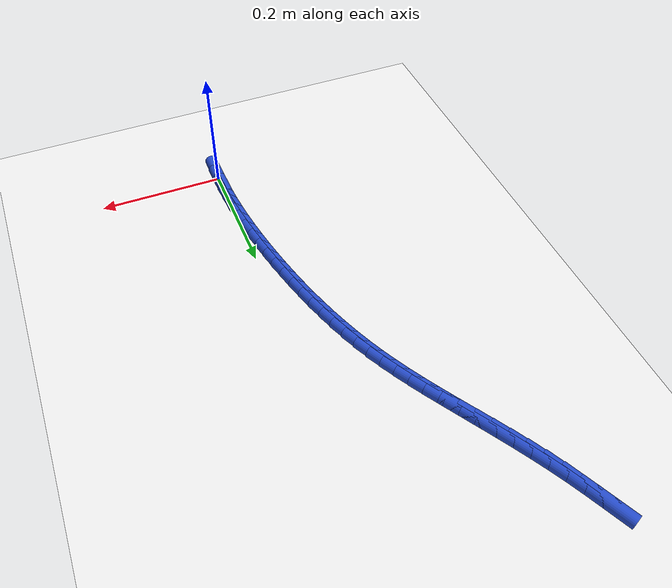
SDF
<sdf version="1.6">
 <world name="default">
  <model name="ground_plane">
   <static>1</static>
   <link name="link">
    <collision name="collision">
     <geometry><plane><normal>0 0 1</normal><size>100 100</size></plane></geometry>
     <surface><friction><ode><mu>100</mu><mu2>50</mu2></ode></friction></surface>
    </collision>
    <visual name="visual">
     <cast_shadows>0</cast_shadows>
     <geometry><plane><normal>0 0 1</normal><size>100 100</size></plane></geometry>
     <material>
      <script><uri>file://media/materials/scripts/gazebo.material</uri><name>Gazebo/WhiteGlow</name></script>
     </material>
    </visual>
   </link>
  </model>
  <model name="line">
   <link name="link_1">
    <pose>-0.00015712953239979557 0.024029646575687506 0.01 0 1.57 -1.534762119984785</pose>
    <collision name="collision">
     <geometry><cylinder><radius>0.01</radius><length>0.08</length></cylinder></geometry>
    </collision>
    <visual name="visual">
     <material>
      <script><name>Gazebo/Blue</name><uri>file://media/materials/scripts/gazebo.material</uri></script>
     </material>
     <geometry><cylinder><radius>0.01</radius><length>0.08</length></cylinder></geometry>
    </visual>
   </link>
   <link name="link_2">
    <pose>-0.0010254811451260578 0.048117196043376824 0.01 0 1.57 -1.5070020505178476</pose>
    <collision name="collision">
     <geometry><cylinder><radius>0.01</radius><length>0.08</length></cylinder></geometry>
    </collision>
    <visual name="visual">
     <material>
      <script><name>Gazebo/Blue</name><uri>file://media/materials/scripts/gazebo.material</uri></script>
     </material>
     <geometry><cylinder><radius>0.01</radius><length>0.08</length></cylinder></geometry>
    </visual>
   </link>
   <link name="link_3">
    <pose>-0.002566957849017019 0.07224765264961866 0.01 0 1.57 -1.4809456970232773</pose>
    <collision name="collision">
     <geometry><cylinder><radius>0.01</radius><length>0.08</length></cylinder></geometry>
    </collision>
    <visual name="visual">
     <material>
      <script><name>Gazebo/Blue</name><uri>file://media/materials/scripts/gazebo.material</uri></script>
     </material>
     <geometry><cylinder><radius>0.01</radius><length>0.08</length></cylinder></geometry>
    </visual>
   </link>
   <link name="link_4">
    <pose>-0.004743462654910904 0.09640602064096374 0.01 0 1.57 -1.4565549815009184</pose>
    <collision name="collision">
     <geometry><cylinder><radius>0.01</radius><length>0.08</length></cylinder></geometry>
    </collision>
    <visual name="visual">
     <material>
      <script><name>Gazebo/Blue</name><uri>file://media/materials/scripts/gazebo.material</uri></script>
     </material>
     <geometry><cylinder><radius>0.01</radius><length>0.08</length></cylinder></geometry>
    </visual>
   </link>
   <link name="link_5">
    <pose>-0.007516898573645941 0.12057730426396276 0.01 0 1.57 -1.4337875323644709</pose>
    <collision name="collision">
     <geometry><cylinder><radius>0.01</radius><length>0.08</length></cylinder></geometry>
    </collision>
    <visual name="visual">
     <material>
      <script><name>Gazebo/Blue</name><uri>file://media/materials/scripts/gazebo.material</uri></script>
     </material>
     <geometry><cylinder><radius>0.01</radius><length>0.08</length></cylinder></geometry>
    </visual>
   </link>
   <link name="link_6">
    <pose>-0.010849168616060355 0.14474650776516648 0.01 0 1.57 -1.4125986293645059</pose>
    <collision name="collision">
     <geometry><cylinder><radius>0.01</radius><length>0.08</length></cylinder></geometry>
    </collision>
    <visual name="visual">
     <material>
      <script><name>Gazebo/Blue</name><uri>file://media/materials/scripts/gazebo.material</uri></script>
     </material>
     <geometry><cylinder><radius>0.01</radius><length>0.08</length></cylinder></geometry>
    </visual>
   </link>
   <link name="link_7">
    <pose>-0.014702175792992371 0.16889863539112565 0.01 0 1.57 -1.3929428521763785</pose>
    <collision name="collision">
     <geometry><cylinder><radius>0.01</radius><length>0.08</length></cylinder></geometry>
    </collision>
    <visual name="visual">
     <material>
      <script><name>Gazebo/Blue</name><uri>file://media/materials/scripts/gazebo.material</uri></script>
     </material>
     <geometry><cylinder><radius>0.01</radius><length>0.08</length></cylinder></geometry>
    </visual>
   </link>
   <link name="link_8">
    <pose>-0.019037823115280218 0.19301869138839095 0.01 0 1.57 -1.374775146268974</pose>
    <collision name="collision">
     <geometry><cylinder><radius>0.01</radius><length>0.08</length></cylinder></geometry>
    </collision>
    <visual name="visual">
     <material>
      <script><name>Gazebo/Blue</name><uri>file://media/materials/scripts/gazebo.material</uri></script>
     </material>
     <geometry><cylinder><radius>0.01</radius><length>0.08</length></cylinder></geometry>
    </visual>
   </link>
   <link name="link_9">
    <pose>-0.023818020900240332 0.2170916772969812 0.01 0 1.57 -1.3574642948151834</pose>
    <collision name="collision">
     <geometry><cylinder><radius>0.01</radius><length>0.08</length></cylinder></geometry>
    </collision>
    <visual name="visual">
     <material>
      <script><name>Gazebo/Blue</name><uri>file://media/materials/scripts/gazebo.material</uri></script>
     </material>
     <geometry><cylinder><radius>0.01</radius><length>0.08</length></cylinder></geometry>
    </visual>
   </link>
   <link name="link_10">
    <pose>-0.02901836761405199 0.24109752416871083 0.01 0 1.57 -1.3391526477794322</pose>
    <collision name="collision">
     <geometry><cylinder><radius>0.01</radius><length>0.08</length></cylinder></geometry>
    </collision>
    <visual name="visual">
     <material>
      <script><name>Gazebo/Blue</name><uri>file://media/materials/scripts/gazebo.material</uri></script>
     </material>
     <geometry><cylinder><radius>0.01</radius><length>0.08</length></cylinder></geometry>
    </visual>
   </link>
   <link name="link_11">
    <pose>-0.03465656522533817 0.26500056669429106 0.01 0 1.57 -1.3194341095053292</pose>
    <collision name="collision">
     <geometry><cylinder><radius>0.01</radius><length>0.08</length></cylinder></geometry>
    </collision>
    <visual name="visual">
     <material>
      <script><name>Gazebo/Blue</name><uri>file://media/materials/scripts/gazebo.material</uri></script>
     </material>
     <geometry><cylinder><radius>0.01</radius><length>0.08</length></cylinder></geometry>
    </visual>
   </link>
   <link name="link_12">
    <pose>-0.04075838458038178 0.28876215061761396 0.01 0 1.57 -1.2982438296133518</pose>
    <collision name="collision">
     <geometry><cylinder><radius>0.01</radius><length>0.08</length></cylinder></geometry>
    </collision>
    <visual name="visual">
     <material>
      <script><name>Gazebo/Blue</name><uri>file://media/materials/scripts/gazebo.material</uri></script>
     </material>
     <geometry><cylinder><radius>0.01</radius><length>0.08</length></cylinder></geometry>
    </visual>
   </link>
   <link name="link_13">
    <pose>-0.04734959652546573 0.312343621682572 0.01 0 1.57 -1.2755126961789984</pose>
    <collision name="collision">
     <geometry><cylinder><radius>0.01</radius><length>0.08</length></cylinder></geometry>
    </collision>
    <visual name="visual">
     <material>
      <script><name>Gazebo/Blue</name><uri>file://media/materials/scripts/gazebo.material</uri></script>
     </material>
     <geometry><cylinder><radius>0.01</radius><length>0.08</length></cylinder></geometry>
    </visual>
   </link>
   <link name="link_14">
    <pose>-0.05445597190687294 0.33570632563305736 0.01 0 1.57 -1.251168259937428</pose>
    <collision name="collision">
     <geometry><cylinder><radius>0.01</radius><length>0.08</length></cylinder></geometry>
    </collision>
    <visual name="visual">
     <material>
      <script><name>Gazebo/Blue</name><uri>file://media/materials/scripts/gazebo.material</uri></script>
     </material>
     <geometry><cylinder><radius>0.01</radius><length>0.08</length></cylinder></geometry>
    </visual>
   </link>
   <link name="link_15">
    <pose>-0.062103281570886355 0.35881160821296265 0.01 0 1.57 -1.2251359467372962</pose>
    <collision name="collision">
     <geometry><cylinder><radius>0.01</radius><length>0.08</length></cylinder></geometry>
    </collision>
    <visual name="visual">
     <material>
      <script><name>Gazebo/Blue</name><uri>file://media/materials/scripts/gazebo.material</uri></script>
     </material>
     <geometry><cylinder><radius>0.01</radius><length>0.08</length></cylinder></geometry>
    </visual>
   </link>
   <link name="link_16">
    <pose>-0.07031729636378886 0.3816208151661799 0.01 0 1.57 -1.19734062881139</pose>
    <collision name="collision">
     <geometry><cylinder><radius>0.01</radius><length>0.08</length></cylinder></geometry>
    </collision>
    <visual name="visual">
     <material>
      <script><name>Gazebo/Blue</name><uri>file://media/materials/scripts/gazebo.material</uri></script>
     </material>
     <geometry><cylinder><radius>0.01</radius><length>0.08</length></cylinder></geometry>
    </visual>
   </link>
   <link name="link_17">
    <pose>-0.07912378713186341 0.40409529223660157 0.01 0 1.57 -1.167708628104993</pose>
    <collision name="collision">
     <geometry><cylinder><radius>0.01</radius><length>0.08</length></cylinder></geometry>
    </collision>
    <visual name="visual">
     <material>
      <script><name>Gazebo/Blue</name><uri>file://media/materials/scripts/gazebo.material</uri></script>
     </material>
     <geometry><cylinder><radius>0.01</radius><length>0.08</length></cylinder></geometry>
    </visual>
   </link>
   <link name="link_18">
    <pose>-0.08854852472139291 0.4261963851681201 0.01 0 1.57 -1.136170246248309</pose>
    <collision name="collision">
     <geometry><cylinder><radius>0.01</radius><length>0.08</length></cylinder></geometry>
    </collision>
    <visual name="visual">
     <material>
      <script><name>Gazebo/Blue</name><uri>file://media/materials/scripts/gazebo.material</uri></script>
     </material>
     <geometry><cylinder><radius>0.01</radius><length>0.08</length></cylinder></geometry>
    </visual>
   </link>
   <link name="link_19">
    <pose>-0.09861727955466063 0.4478854401632751 0.01 0 1.57 -1.1039069110874744</pose>
    <collision name="collision">
     <geometry><cylinder><radius>0.01</radius><length>0.08</length></cylinder></geometry>
    </collision>
    <visual name="visual">
     <material>
      <script><name>Gazebo/Blue</name><uri>file://media/materials/scripts/gazebo.material</uri></script>
     </material>
     <geometry><cylinder><radius>0.01</radius><length>0.08</length></cylinder></geometry>
    </visual>
   </link>
   <link name="link_20">
    <pose>-0.1093343643420875 0.46914701458705005 0.01 0 1.57 -1.0755684794429023</pose>
    <collision name="collision">
     <geometry><cylinder><radius>0.01</radius><length>0.08</length></cylinder></geometry>
    </collision>
    <visual name="visual">
     <material>
      <script><name>Gazebo/Blue</name><uri>file://media/materials/scripts/gazebo.material</uri></script>
     </material>
     <geometry><cylinder><radius>0.01</radius><length>0.08</length></cylinder></geometry>
    </visual>
   </link>
   <link name="link_21">
    <pose>-0.12062511963380591 0.4900510912986632 0.01 0 1.57 -1.0524000151151458</pose>
    <collision name="collision">
     <geometry><cylinder><radius>0.01</radius><length>0.08</length></cylinder></geometry>
    </collision>
    <visual name="visual">
     <material>
      <script><name>Gazebo/Blue</name><uri>file://media/materials/scripts/gazebo.material</uri></script>
     </material>
     <geometry><cylinder><radius>0.01</radius><length>0.08</length></cylinder></geometry>
    </visual>
   </link>
   <link name="link_22">
    <pose>-0.13239672260601829 0.5106873007798525 0.01 0 1.57 -1.0345260010369837</pose>
    <collision name="collision">
     <geometry><cylinder><radius>0.01</radius><length>0.08</length></cylinder></geometry>
    </collision>
    <visual name="visual">
     <material>
      <script><name>Gazebo/Blue</name><uri>file://media/materials/scripts/gazebo.material</uri></script>
     </material>
     <geometry><cylinder><radius>0.01</radius><length>0.08</length></cylinder></geometry>
    </visual>
   </link>
   <link name="link_23">
    <pose>-0.14455635043492715 0.5311452735123564 0.01 0 1.57 -1.0220009083321053</pose>
    <collision name="collision">
     <geometry><cylinder><radius>0.01</radius><length>0.08</length></cylinder></geometry>
    </collision>
    <visual name="visual">
     <material>
      <script><name>Gazebo/Blue</name><uri>file://media/materials/scripts/gazebo.material</uri></script>
     </material>
     <geometry><cylinder><radius>0.01</radius><length>0.08</length></cylinder></geometry>
    </visual>
   </link>
   <link name="link_24">
    <pose>-0.157011180296735 0.551514639977913 0.01 0 1.57 -1.0148236706591967</pose>
    <collision name="collision">
     <geometry><cylinder><radius>0.01</radius><length>0.08</length></cylinder></geometry>
    </collision>
    <visual name="visual">
     <material>
      <script><name>Gazebo/Blue</name><uri>file://media/materials/scripts/gazebo.material</uri></script>
     </material>
     <geometry><cylinder><radius>0.01</radius><length>0.08</length></cylinder></geometry>
    </visual>
   </link>
   <link name="link_25">
    <pose>-0.16966838936764422 0.57188503065826 0.01 0 1.57 -1.012949040087298</pose>
    <collision name="collision">
     <geometry><cylinder><radius>0.01</radius><length>0.08</length></cylinder></geometry>
    </collision>
    <visual name="visual">
     <material>
      <script><name>Gazebo/Blue</name><uri>file://media/materials/scripts/gazebo.material</uri></script>
     </material>
     <geometry><cylinder><radius>0.01</radius><length>0.08</length></cylinder></geometry>
    </visual>
   </link>
   <link name="link_26">
    <pose>-0.18243515482385728 0.592346076035136 0.01 0 1.57 -1.0162950817574345</pose>
    <collision name="collision">
     <geometry><cylinder><radius>0.01</radius><length>0.08</length></cylinder></geometry>
    </collision>
    <visual name="visual">
     <material>
      <script><name>Gazebo/Blue</name><uri>file://media/materials/scripts/gazebo.material</uri></script>
     </material>
     <geometry><cylinder><radius>0.01</radius><length>0.08</length></cylinder></geometry>
    </visual>
   </link>
   <link name="link_27">
    <pose>-0.1952186538415767 0.6129874065902788 0.01 0 1.57 -1.0247466729481558</pose>
    <collision name="collision">
     <geometry><cylinder><radius>0.01</radius><length>0.08</length></cylinder></geometry>
    </collision>
    <visual name="visual">
     <material>
      <script><name>Gazebo/Blue</name><uri>file://media/materials/scripts/gazebo.material</uri></script>
     </material>
     <geometry><cylinder><radius>0.01</radius><length>0.08</length></cylinder></geometry>
    </visual>
   </link>
   <link name="link_28">
    <pose>-0.20792606359700502 0.6338986528054272 0.01 0 1.57 -1.0381553246730917</pose>
    <collision name="collision">
     <geometry><cylinder><radius>0.01</radius><length>0.08</length></cylinder></geometry>
    </collision>
    <visual name="visual">
     <material>
      <script><name>Gazebo/Blue</name><uri>file://media/materials/scripts/gazebo.material</uri></script>
     </material>
     <geometry><cylinder><radius>0.01</radius><length>0.08</length></cylinder></geometry>
    </visual>
   </link>
   <link name="link_29">
    <pose>-0.22046456126634462 0.6551694451623188 0.01 0 1.57 -1.056335992029727</pose>
    <collision name="collision">
     <geometry><cylinder><radius>0.01</radius><length>0.08</length></cylinder></geometry>
    </collision>
    <visual name="visual">
     <material>
      <script><name>Gazebo/Blue</name><uri>file://media/materials/scripts/gazebo.material</uri></script>
     </material>
     <geometry><cylinder><radius>0.01</radius><length>0.08</length></cylinder></geometry>
    </visual>
   </link>
   <link name="link_30">
    <pose>-0.23274132402579786 0.6768894141426913 0.01 0 1.57 -1.0790618324481958</pose>
    <collision name="collision">
     <geometry><cylinder><radius>0.01</radius><length>0.08</length></cylinder></geometry>
    </collision>
    <visual name="visual">
     <material>
      <script><name>Gazebo/Blue</name><uri>file://media/materials/scripts/gazebo.material</uri></script>
     </material>
     <geometry><cylinder><radius>0.01</radius><length>0.08</length></cylinder></geometry>
    </visual>
   </link>
   <link name="link_31">
    <pose>-0.24466352905156738 0.6991481902282837 0.01 0 1.57 -1.1055376811638797</pose>
    <collision name="collision">
     <geometry><cylinder><radius>0.01</radius><length>0.08</length></cylinder></geometry>
    </collision>
    <visual name="visual">
     <material>
      <script><name>Gazebo/Blue</name><uri>file://media/materials/scripts/gazebo.material</uri></script>
     </material>
     <geometry><cylinder><radius>0.01</radius><length>0.08</length></cylinder></geometry>
    </visual>
   </link>
   <link name="link_32">
    <pose>-0.25614729190583174 0.7220235091410367 0.01 0 1.57 -1.1254862418766172</pose>
    <collision name="collision">
     <geometry><cylinder><radius>0.01</radius><length>0.08</length></cylinder></geometry>
    </collision>
    <visual name="visual">
     <material>
      <script><name>Gazebo/Blue</name><uri>file://media/materials/scripts/gazebo.material</uri></script>
     </material>
     <geometry><cylinder><radius>0.01</radius><length>0.08</length></cylinder></geometry>
    </visual>
   </link>
   <link name="link_33">
    <pose>-0.2672848295646846 0.745358759593939 0.01 0 1.57 -1.1302014294361307</pose>
    <collision name="collision">
     <geometry><cylinder><radius>0.01</radius><length>0.08</length></cylinder></geometry>
    </collision>
    <visual name="visual">
     <material>
      <script><name>Gazebo/Blue</name><uri>file://media/materials/scripts/gazebo.material</uri></script>
     </material>
     <geometry><cylinder><radius>0.01</radius><length>0.08</length></cylinder></geometry>
    </visual>
   </link>
   <link name="link_290">
    <pose>6.5052130349130266e-18 1.8041124150158794e-16 0.01 0 1.57 -1.5635101647497707</pose>
    <collision name="collision">
     <geometry><cylinder><radius>0.01</radius><length>0.08</length></cylinder></geometry>
    </collision>
    <visual name="visual">
     <material>
      <script><name>Gazebo/Blue</name><uri>file://media/materials/scripts/gazebo.material</uri></script>
     </material>
     <geometry><cylinder><radius>0.01</radius><length>0.08</length></cylinder></geometry>
    </visual>
   </link>
   <link name="link_291">
    <pose>-0.0001751465992343576 0.024037826599965582 0.01 0 1.57 -1.529631815003016</pose>
    <collision name="collision">
     <geometry><cylinder><radius>0.01</radius><length>0.08</length></cylinder></geometry>
    </collision>
    <visual name="visual">
     <material>
      <script><name>Gazebo/Blue</name><uri>file://media/materials/scripts/gazebo.material</uri></script>
     </material>
     <geometry><cylinder><radius>0.01</radius><length>0.08</length></cylinder></geometry>
    </visual>
   </link>
   <link name="link_292">
    <pose>-0.0011696176798027553 0.04818263623760571 0.01 0 1.57 -1.5465264213658372</pose>
    <collision name="collision">
     <geometry><cylinder><radius>0.01</radius><length>0.08</length></cylinder></geometry>
    </collision>
    <visual name="visual">
     <material>
      <script><name>Gazebo/Blue</name><uri>file://media/materials/scripts/gazebo.material</uri></script>
     </material>
     <geometry><cylinder><radius>0.01</radius><length>0.08</length></cylinder></geometry>
    </visual>
   </link>
  </model>
 </world>
</sdf>
